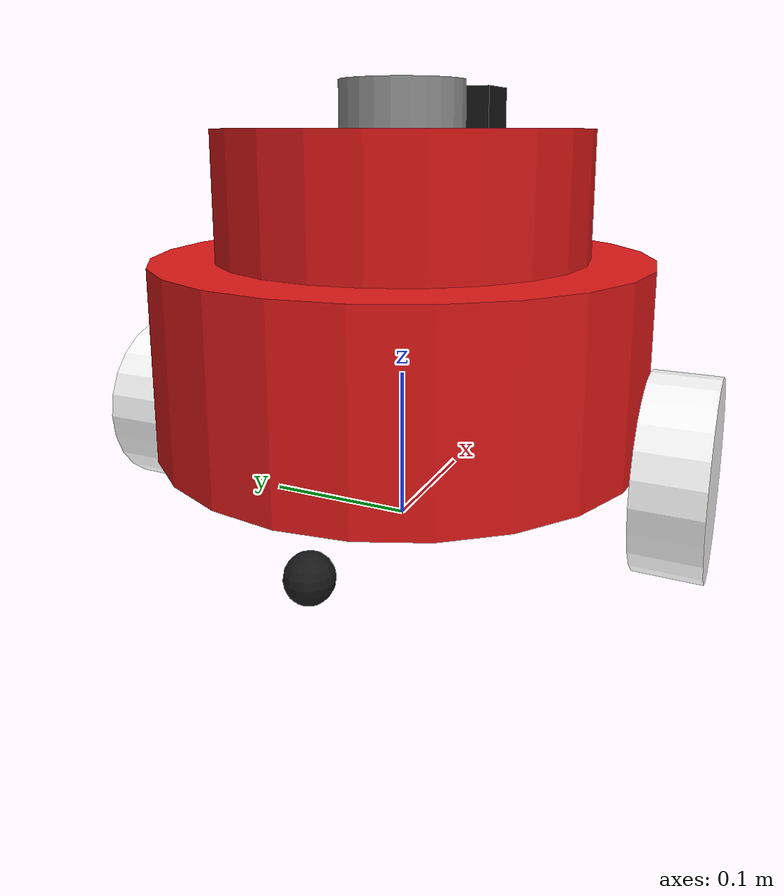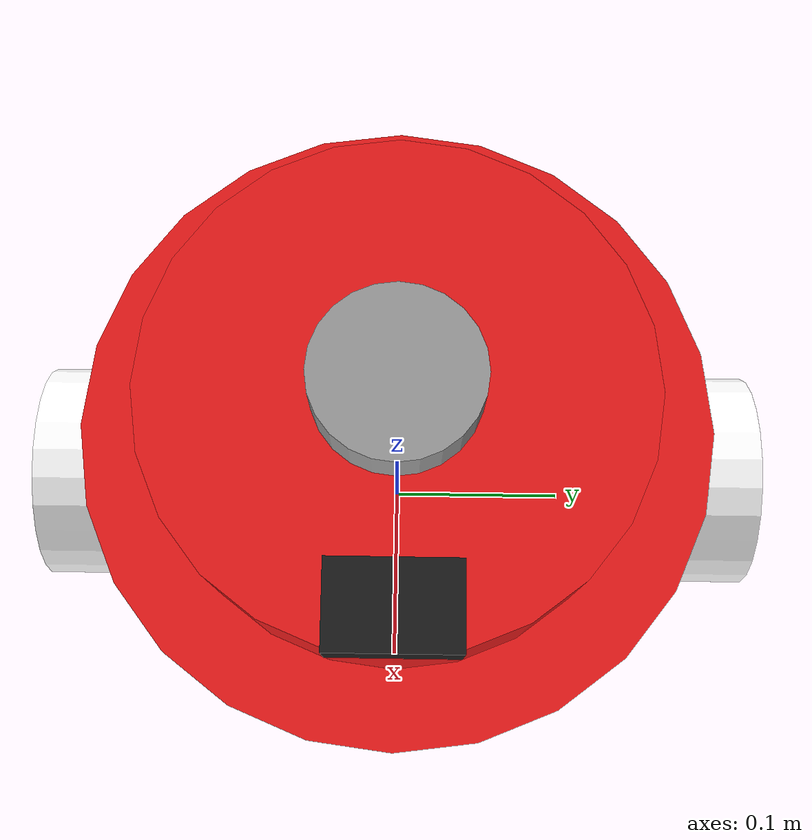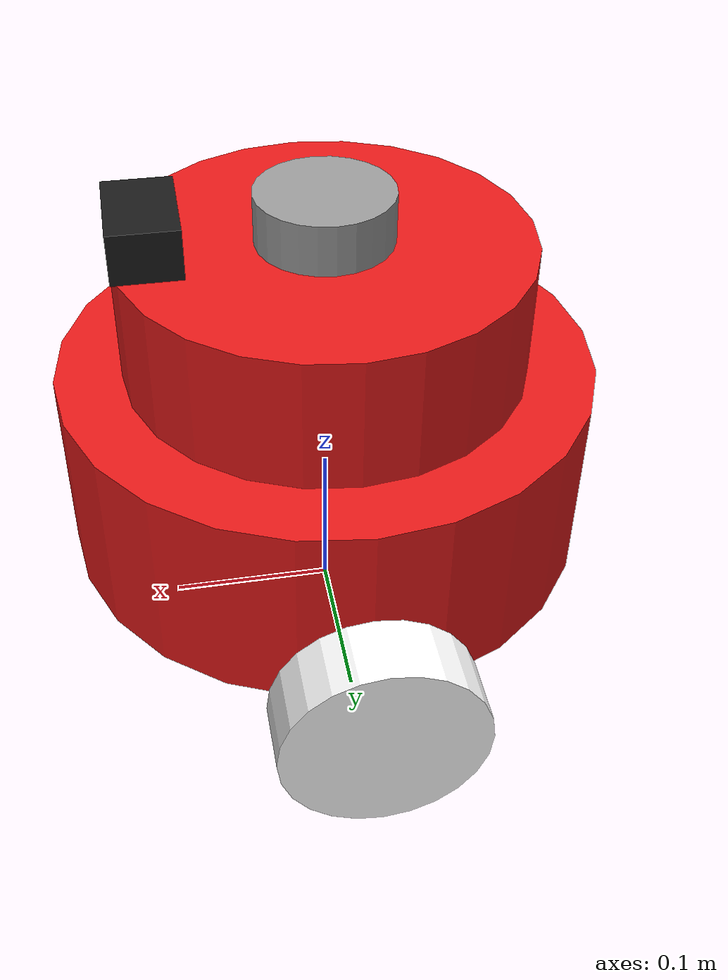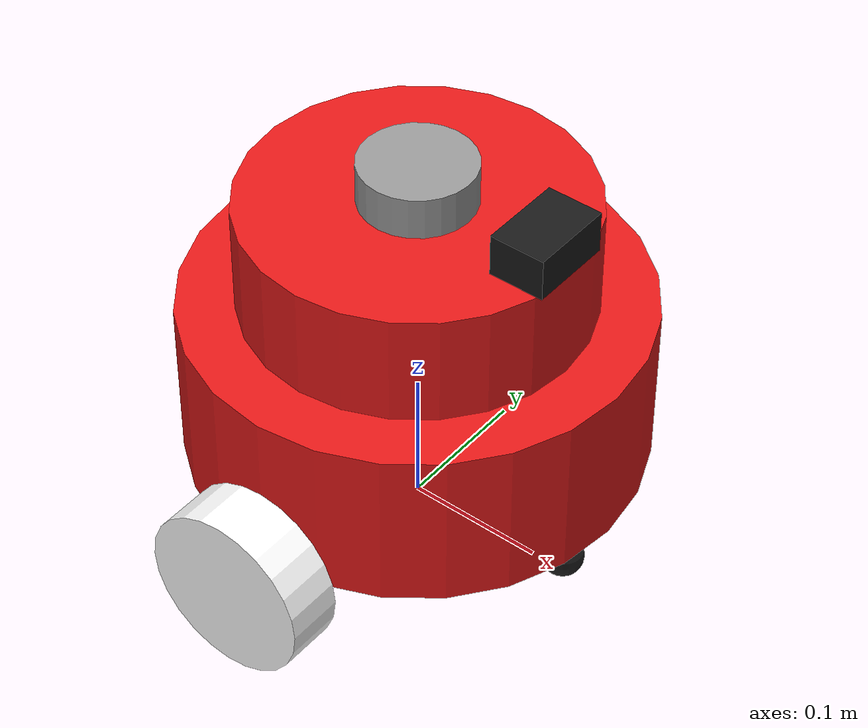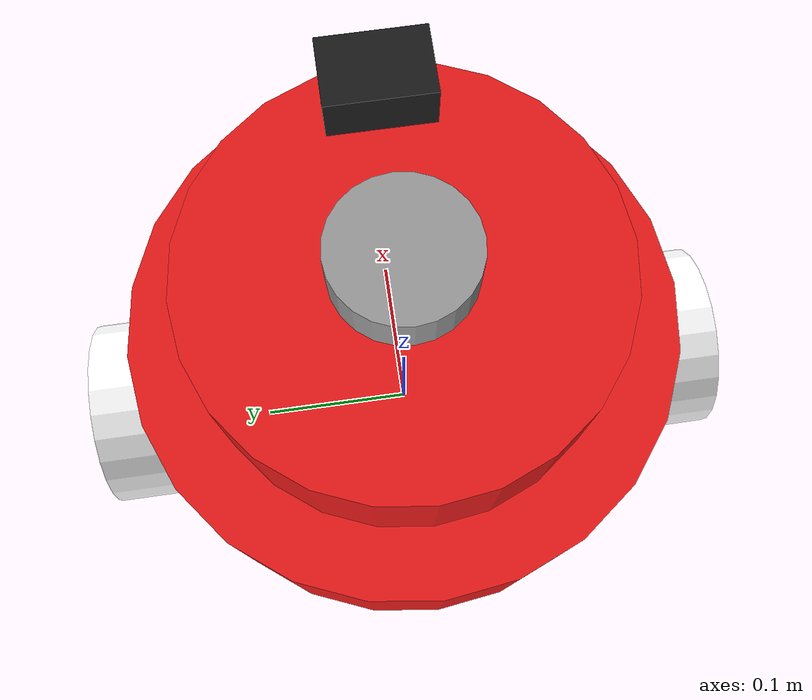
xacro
<?xml version="1.0"?>
<robot name="diff_drive_robot" xmlns:xacro="http://www.ros.org/wiki/xacro">

  <xacro:include filename="$(find my_robot_description)/urdf/robot_properties.xacro" />

  <xacro:include filename="$(find my_robot_description)/urdf/materials.xacro" />
  <xacro:include filename="$(find my_robot_description)/urdf/base_body.xacro" />
  <xacro:include filename="$(find my_robot_description)/urdf/drive_wheel.xacro" />

  <xacro:include filename="$(find my_robot_description)/urdf/caster_wheel.xacro" />

  <xacro:include filename="$(find my_robot_description)/urdf/sensor_camera.xacro" />

  <xacro:include filename="$(find my_robot_description)/urdf/sensor_lidar.xacro" />

  <xacro:include filename="$(find my_robot_description)/urdf/gazebo_plugin.xacro" />
</robot>

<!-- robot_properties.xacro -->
<robot xmlns:xacro="http://www.ros.org/wiki/xacro">

  <xacro:property name="base_lower_radius"  value="0.16" />
  <xacro:property name="base_lower_height"  value="0.12" />
  <xacro:property name="base_lower_mass"    value="2.0" />

  <xacro:property name="base_upper_radius"  value="0.12" />
  <xacro:property name="base_upper_height"  value="0.08" />
  <xacro:property name="base_upper_mass"    value="0.5" />

  <xacro:property name="wheel_radius"  value="0.06" />
  <xacro:property name="wheel_length"  value="0.04" />
  <xacro:property name="wheel_mass"    value="0.2" />

  <xacro:property name="wheel_offset_x" value="0.0" />
  <xacro:property name="wheel_offset_y" value="${base_lower_radius + wheel_length/2}" />

  <xacro:property name="wheel_offset_z" value="${-base_lower_height/2}" />

  <!-- ==================== 万向轮参数（关键修正）==================== -->
  <xacro:property name="caster_radius"  value="0.015" />
  <xacro:property name="caster_mass"    value="0.05" />

  <xacro:property name="caster_offset_x" value="${base_lower_radius - caster_radius - 0.02}" />

  <xacro:property name="caster_offset_z" value="${wheel_offset_z - wheel_radius + caster_radius}" />

  <xacro:property name="camera_length" value="0.04" />
  <xacro:property name="camera_width"  value="0.06" />
  <xacro:property name="camera_height" value="0.03" />
  <xacro:property name="camera_mass"   value="0.05" />

  <xacro:property name="lidar_radius"  value="0.04" />
  <xacro:property name="lidar_height"  value="0.03" />
  <xacro:property name="lidar_mass"    value="0.1" />

  <xacro:property name="PI" value="3.14159265359" />

  <xacro:macro name="cylinder_inertia" params="m r h">
    <inertial>
      <mass value="${m}" />
      <inertia
        ixx="${m*(3*r*r+h*h)/12}" ixy="0" ixz="0"
        iyy="${m*(3*r*r+h*h)/12}" iyz="0"
        izz="${m*r*r/2}" />
    </inertial>
  </xacro:macro>

  <xacro:macro name="sphere_inertia" params="m r">
    <inertial>
      <mass value="${m}" />
      <inertia
        ixx="${2*m*r*r/5}" ixy="0" ixz="0"
        iyy="${2*m*r*r/5}" iyz="0"
        izz="${2*m*r*r/5}" />
    </inertial>
  </xacro:macro>

  <xacro:macro name="box_inertia" params="m x y z">
    <inertial>
      <mass value="${m}" />
      <inertia
        ixx="${m*(y*y+z*z)/12}" ixy="0" ixz="0"
        iyy="${m*(x*x+z*z)/12}" iyz="0"
        izz="${m*(x*x+y*y)/12}" />
    </inertial>
  </xacro:macro>

</robot>

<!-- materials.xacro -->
<robot xmlns:xacro="http://www.ros.org/wiki/xacro">

  <material name="red">
    <color rgba="0.9 0.1 0.1 1.0" />
  </material>

  <material name="white">
    <color rgba="1.0 1.0 1.0 1.0" />
  </material>

  <material name="black">
    <color rgba="0.1 0.1 0.1 1.0" />
  </material>

  <material name="grey">
    <color rgba="0.6 0.6 0.6 1.0" />
  </material>

  <material name="dark_grey">
    <color rgba="0.3 0.3 0.3 1.0" />
  </material>

</robot>

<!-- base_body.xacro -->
<robot xmlns:xacro="http://www.ros.org/wiki/xacro">

  <link name="base_footprint" />

  <link name="base_link">
    <visual>
      <geometry>
        <cylinder radius="${base_lower_radius}" length="${base_lower_height}" />
      </geometry>
      <origin xyz="0 0 0" rpy="0 0 0" />
      <material name="red" />
    </visual>

    <collision>
      <geometry>
        <cylinder radius="${base_lower_radius}" length="${base_lower_height}" />
      </geometry>
      <origin xyz="0 0 0" rpy="0 0 0" />
    </collision>

    <xacro:cylinder_inertia m="${base_lower_mass}" r="${base_lower_radius}" h="${base_lower_height}" />
  </link>

  <joint name="base_footprint_to_base_link" type="fixed">
    <parent link="base_footprint" />
    <child link="base_link" />
    <origin xyz="0 0 ${wheel_radius + base_lower_height/2}" rpy="0 0 0" />
  </joint>

  <link name="upper_base_link">
    <visual>
      <geometry>
        <cylinder radius="${base_upper_radius}" length="${base_upper_height}" />
      </geometry>
      <origin xyz="0 0 0" rpy="0 0 0" />
      <material name="red" />
    </visual>

    <collision>
      <geometry>
        <cylinder radius="${base_upper_radius}" length="${base_upper_height}" />
      </geometry>
      <origin xyz="0 0 0" rpy="0 0 0" />
    </collision>

    <xacro:cylinder_inertia m="${base_upper_mass}" r="${base_upper_radius}" h="${base_upper_height}" />
  </link>

  <joint name="base_to_upper_base" type="fixed">
    <parent link="base_link" />
    <child link="upper_base_link" />
    <origin xyz="0 0 ${base_lower_height/2 + base_upper_height/2}" rpy="0 0 0" />
  </joint>

</robot>

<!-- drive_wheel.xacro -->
<robot xmlns:xacro="http://www.ros.org/wiki/xacro">

  <xacro:macro name="drive_wheel" params="prefix y_reflect">

    <link name="${prefix}_wheel_link">
      <visual>
        <geometry>
          <cylinder radius="${wheel_radius}" length="${wheel_length}" />
        </geometry>
        <origin xyz="0 0 0" rpy="${PI/2} 0 0" />
        <material name="white" />
      </visual>

      <collision>
        <geometry>
          <cylinder radius="${wheel_radius}" length="${wheel_length}" />
        </geometry>
        <origin xyz="0 0 0" rpy="${PI/2} 0 0" />
      </collision>

      <xacro:cylinder_inertia m="${wheel_mass}" r="${wheel_radius}" h="${wheel_length}" />
    </link>
    <joint name="${prefix}_wheel_joint" type="continuous">
      <parent link="base_link" />
      <child link="${prefix}_wheel_link" />
      <origin
        xyz="${wheel_offset_x} ${y_reflect * wheel_offset_y} ${wheel_offset_z}"
        rpy="0 0 0" />
      <axis xyz="0 1 0" />
    </joint>

  </xacro:macro>

  <xacro:drive_wheel prefix="left"  y_reflect="1" />
  <xacro:drive_wheel prefix="right" y_reflect="-1" />

</robot>

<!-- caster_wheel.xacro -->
<robot xmlns:xacro="http://www.ros.org/wiki/xacro">

  <!-- ====== 万向轮宏定义 ====== -->
  <!--
    参数:
      prefix     - 名称前缀 ("front" 或 "rear")
      x_reflect  - X方向系数 (1=前方, -1=后方)
  -->
  <xacro:macro name="caster_wheel" params="prefix x_reflect">

    <!-- 万向轮link -->
    <link name="${prefix}_caster_link">
      <visual>
        <geometry>
          <sphere radius="${caster_radius}" />
        </geometry>
        <origin xyz="0 0 0" rpy="0 0 0" />
        <material name="black" />
      </visual>

      <collision>
        <geometry>
          <sphere radius="${caster_radius}" />
        </geometry>
        <origin xyz="0 0 0" rpy="0 0 0" />
      </collision>

      <xacro:sphere_inertia m="${caster_mass}" r="${caster_radius}" />
    </link>
    <joint name="${prefix}_caster_joint" type="fixed">
      <parent link="base_link" />
      <child link="${prefix}_caster_link" />
      <origin
        xyz="${x_reflect * caster_offset_x} 0 ${caster_offset_z}"
        rpy="0 0 0" />
    </joint>

  </xacro:macro>

  <xacro:caster_wheel prefix="front" x_reflect="1" />
  <xacro:caster_wheel prefix="rear"  x_reflect="-1" />

</robot>

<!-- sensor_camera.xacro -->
<robot xmlns:xacro="http://www.ros.org/wiki/xacro">

  <link name="camera_link">
    <visual>
      <geometry>

        <box size="${camera_length} ${camera_width} ${camera_height}" />
      </geometry>
      <origin xyz="0 0 0" rpy="0 0 0" />
      <material name="black" />
    </visual>

    <collision>
      <geometry>
        <box size="${camera_length} ${camera_width} ${camera_height}" />
      </geometry>
      <origin xyz="0 0 0" rpy="0 0 0" />
    </collision>

    <xacro:box_inertia m="${camera_mass}" x="${camera_length}" y="${camera_width}" z="${camera_height}" />
  </link>

  <joint name="camera_joint" type="fixed">
    <parent link="upper_base_link" />
    <child link="camera_link" />
    <origin
      xyz="${base_upper_radius - camera_length/2} 0 ${base_upper_height/2 + camera_height/2}"
      rpy="0 0 0" />
  </joint>

  <link name="camera_optical_link" />

  <joint name="camera_optical_joint" type="fixed">
    <parent link="camera_link" />
    <child link="camera_optical_link" />

    <origin xyz="0 0 0" rpy="${-PI/2} 0 ${-PI/2}" />
  </joint>

</robot>

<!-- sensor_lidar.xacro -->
<robot xmlns:xacro="http://www.ros.org/wiki/xacro">

  <link name="lidar_link">
    <visual>
      <geometry>
        <cylinder radius="${lidar_radius}" length="${lidar_height}" />
      </geometry>
      <origin xyz="0 0 0" rpy="0 0 0" />
      <material name="grey" />
    </visual>

    <collision>
      <geometry>
        <cylinder radius="${lidar_radius}" length="${lidar_height}" />
      </geometry>
      <origin xyz="0 0 0" rpy="0 0 0" />
    </collision>

    <xacro:cylinder_inertia m="${lidar_mass}" r="${lidar_radius}" h="${lidar_height}" />
  </link>

  <joint name="lidar_joint" type="fixed">
    <parent link="upper_base_link" />
    <child link="lidar_link" />
    <origin xyz="0 0 ${base_upper_height/2 + lidar_height/2}" rpy="0 0 0" />
  </joint>

</robot>
